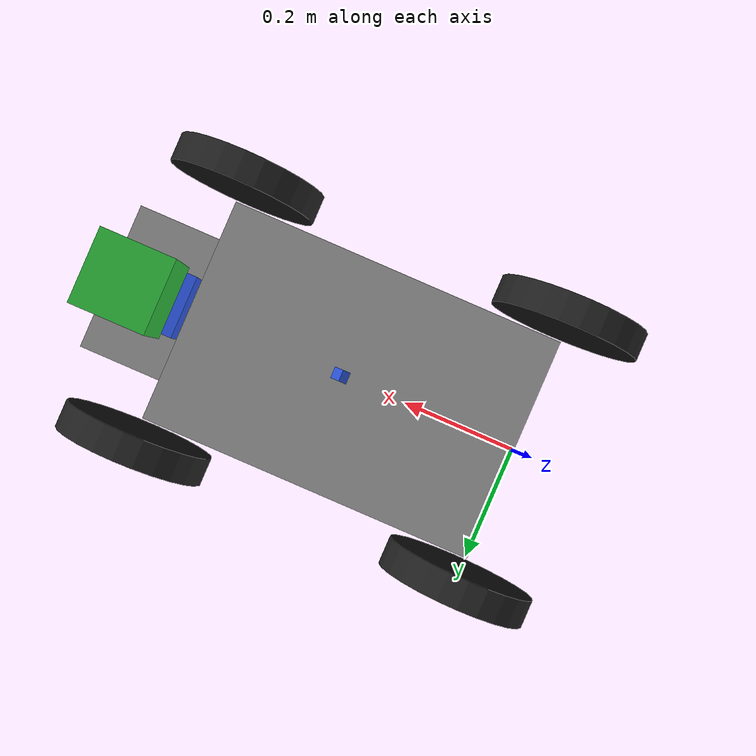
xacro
<?xml version="1.0"?>
<robot xmlns:xacro="http://www.ros.org/wiki/xacro" name="whill" >

    <link name="base_link">
    </link>

    <link name="base_floor">
        <visual>
            <geometry>
                <box size="0.600 0.400 0.050"/>
            </geometry>
            <material name="grey">
                <color rgba="0.5 0.5 0.5 1.0"/>
            </material>
        </visual>

        <collision>
            <geometry>
                <box size="0.600 0.400 0.050"/>
            </geometry>
        </collision>

        <inertial>
            <origin xyz="0 0 0" rpy="0 0 0" />
            <mass value="40" />
            <inertia ixx="1.0"  ixy="0.0"   ixz="0.0"
                                iyy="1.0"   iyz="0.0"
                                            izz="1.0" />
        </inertial>
    </link>

    <joint name="base_body_joint" type="fixed">
        <parent link="base_link" />
        <child link="base_floor" />
        <origin xyz="0.3 0 0.0" rpy="0 0 0"/>
    </joint>

    <link name="footrest_link">
        <collision>
            <geometry>
                <box size="0.250 0.260 0.050"/>
            </geometry>
        </collision>
        <visual>
            <geometry>
                <box size="0.250 0.260 0.050"/>
            </geometry>
            <material name="grey">
                <color rgba="0.5 0.5 0.5 1.0"/>
            </material>
        </visual>
        <inertial>
            <origin xyz="0 0 0" rpy="0 0 0" />
            <mass value="1" />
            <inertia ixx="1.0"  ixy="0.0"   ixz="0.0"
                                iyy="1.0"   iyz="0.0"
                                            izz="1.0" />
        </inertial>
    </link>

    <joint name="footrest_joint" type="fixed">
        <parent link="base_floor" />
        <child link="footrest_link" />
        <origin xyz="0.320 0 0" rpy="0 0 0"/>
    </joint>

    <link name="left_wheel_link">
        <visual>
            <geometry>
                <cylinder length="0.05" radius="0.1325"/>
            </geometry>
            <origin xyz="0 0 0" rpy="0 0 0" />
            <material name="black" />
        </visual>

        <collision>
            <geometry>
                <cylinder length="0.05" radius="0.1325"/>
            </geometry>
        </collision>

        <inertial>
            <origin xyz="0 0 0"/>
            <mass value="0.500"/>
            <inertia ixx="0.0013541667" ixy="0" ixz="0" iyy="0.0013541667" iyz="0" izz="0.0025"/>
        </inertial>
    </link>

    <joint name="leftWheel" type="continuous">
        <parent link="base_floor" />
        <child link="left_wheel_link" />
        <origin xyz="-0.3 0.245 0" rpy="1.57 0 0" />
        <axis xyz="0 0 -1" />
    </joint>

    <link name="right_wheel_link">
        <collision>
            <origin xyz="0 0 0" rpy="0 0 0" />
            <geometry>
                <cylinder length="0.05" radius="0.1325"/>
            </geometry>
        </collision>
        <visual>
            <origin xyz="0 0 0" rpy="0 0 0" />
            <geometry>
                <cylinder length="0.05" radius="0.1325"/>
            </geometry>
            <material name="black" />
        </visual>
        <inertial>
            <origin xyz="0 0 0"/>
            <mass value="0.500"/>
            <inertia ixx="0.0013541667" ixy="0" ixz="0" iyy="0.0013541667" iyz="0" izz="0.0025"/>
        </inertial>
    </link>

    <joint name="rightWheel" type="continuous">
        <parent link="base_floor" />
        <child link="right_wheel_link" />
        <origin xyz="-0.3 -0.245 0" rpy="-1.57 0 0" />
        <axis xyz="0 0 1" />
    </joint>

    <link name="frontwheel_left">
        <collision>
            <geometry>
                <cylinder length="0.05" radius="0.1325"/>
            </geometry>
        </collision>

        <visual>
            <geometry>
                <cylinder length="0.05" radius="0.1325"/>
            </geometry>
            <material name="black" />
        </visual>

        <inertial>
            <origin xyz="0 0 0" rpy="0 0 0" />
            <mass value="1.0" />
            <inertia ixx="1.0"  ixy="0.0"   ixz="0.0"
                                iyy="1.0"   iyz="0.0"
                                            izz="1.0" />
        </inertial>
    </link>

    <joint name="frontwheel_left_joint" type="fixed">
        <parent link="base_floor" />
        <child link="frontwheel_left" />
        <origin xyz="0.3 -0.245 0" rpy="1.57 0 0" />
        <axis xyz="0 0 -1" />
    </joint>

    <link name="frontwheel_right">
        <collision>
            <geometry>
                <cylinder length="0.05" radius="0.1325"/>
            </geometry>
        </collision>

        <visual>
            <geometry>
                <cylinder length="0.05" radius="0.1325"/>
            </geometry>
            <material name="black" />
        </visual>

        <inertial>
            <origin xyz="0 0 0" rpy="0 0 0" />
            <mass value="1.0" />
            <inertia ixx="1.0"  ixy="0.0"   ixz="0.0"
                                iyy="1.0"   iyz="0.0"
                                            izz="1.0" />
        </inertial>
    </link>

    <joint name="frontwheel_right_joint" type="fixed">
        <parent link="base_floor" />
        <child link="frontwheel_right"/>
        <origin xyz="0.3 0.245 0" rpy="1.57 0 0" />
        <axis xyz="0 0 1" />
    </joint>

     <!-- ===============  IMU =============== -->
    <link name="imu">
    <visual>
        <origin xyz="0 0 0" rpy="0 0 0" />
            <geometry>
                <box size="0.02 0.02 0.02"/>
            </geometry>
            <material name="Blue" />
        </visual>
    </link>

    <joint name="imu_joint" type="fixed">
        <parent link="base_floor"/>
        <child link="imu"/>
        <axis xyz="0 1 0" />
        <origin xyz="0.02 0 0.05" rpy="0 0.85521133347 3.14159265359"/>
    </joint>

    <!-- =============== Sensor =============== -->
    <!-- =============== Camera =============== -->
    <link name="camera_link">
    <visual>
      <origin xyz="0 0 0" rpy="0 0 0" />
      <geometry>
        <box size="0.05 0.1 0.05"/>
      </geometry>
      <material name="Blue" />
    </visual>
  </link>

  <joint name="camera_joint" type="fixed">
    <parent link="base_floor"/>
    <child link="camera_link" />
    <origin xyz="0.3 0 0.2" rpy="0 0 0" />
  </joint>

  <gazebo reference="camera_link">
    <material>Gazebo/Blue</material>
    <turnGravityOff>false</turnGravityOff>
    <sensor type="camera" name="camera1">
      <update_rate>15.0</update_rate>
      <camera name="head">

          <pose>0 0 0 0 0 0</pose>

        <horizontal_fov>1.3962634</horizontal_fov>
        <image>
          <width>400</width>
          <height>400</height>
          <format>R8G8B8</format>
        </image>
        <clip>
          <near>0.01</near>
          <far>100</far>
        </clip>
        <noise>
          <type>gaussian</type>
          <stddev>0.007</stddev>
        </noise>
      </camera>
      <plugin name="camera_controller" filename="libgazebo_ros_camera.so">
        <alwaysOn>true</alwaysOn>
        <updateRate>0.0</updateRate>
        <cameraName>whill/camera1</cameraName>
        <imageTopicName>image_raw</imageTopicName>
        <cameraInfoTopicName>camera_info</cameraInfoTopicName>
        <frameName>camera_link</frameName>
        <hackBaseline>0.07</hackBaseline>
        <distortionK1>0.0</distortionK1>
        <distortionK2>0.0</distortionK2>
        <distortionK3>0.0</distortionK3>
        <distortionT1>0.0</distortionT1>
        <distortionT2>0.0</distortionT2>
      </plugin>
    </sensor>
  </gazebo>
    <!-- =============== LiDAR =============== -->
    <link name="lidar_link">
        <visual>
        <origin xyz="0 0 0" rpy="0 0 0" />
        <geometry>
            <box size="0.1 0.1 0.1"/>
        </geometry>
        <material name="Green" />
        </visual>
    </link>

    <joint name="lidar_joint" type="fixed">
        <parent link="base_floor"/>
        <child link="lidar_link" />
        <origin xyz="0.3 0 0.5" rpy="0 0 0" />
    </joint>

    <gazebo reference="lidar_link">
        <material>Gazebo/Green</material>
        <sensor type="ray" name="head_rplidar_sensor">
            <pose>0 0 0 0 0 0</pose>
            <visualize>false</visualize>
            <update_rate>40</update_rate>
            <ray>
                <scan>
                    <horizontal>
                        <samples>720</samples>
                        <resolution>1</resolution>
                        <min_angle>-3.14159265</min_angle>
                        <max_angle>3.14159265</max_angle>
                    </horizontal>
                </scan>
                <range>
                    <min>0.2</min>
                    <max>12.0</max>
                    <resolution>0.01</resolution>
                </range>
                <noise>
                    <type>gaussian</type>
                    <mean>0.0</mean>
                    <stddev>0.01</stddev>
                </noise>
            </ray>
            <plugin name="gazebo_ros_head_rplidar_controller" filename="libgazebo_ros_laser.so">
                <topicName>scan</topicName>
                <frameName>lidar_link</frameName>
            </plugin>
            </sensor>
    </gazebo>
    <!-- ===============  Transmission =============== -->

    <transmission name="right_wheel_trans">
        <type>transmission_interface/SimpleTransmission</type>
        <joint name="rightWheel">
            <hardwareInterface>hardware_interface/VelocityJointInterface</hardwareInterface>
        </joint>
        <actuator name="right_wheel_motor">
            <hardwareInterface>hardware_interface/VelocityJointInterface</hardwareInterface>
            <mechanicalReduction>30</mechanicalReduction>
        </actuator>
    </transmission>

    <transmission name="left_wheel_trans">
        <type>transmission_interface/SimpleTransmission</type>
        <joint name="leftWheel">
            <hardwareInterface>hardware_interface/VelocityJointInterface</hardwareInterface>
        </joint>
        <actuator name="left_wheel_motor">
            <hardwareInterface>hardware_interface/VelocityJointInterface</hardwareInterface>
            <mechanicalReduction>30</mechanicalReduction>
        </actuator>
    </transmission>

    <!-- ===============  Gazebo =============== -->
    <gazebo>
        <plugin name="gazebo_ros_control" filename="libgazebo_ros_control.so">
            <robotNamespace>/whill</robotNamespace>
            <legacyModeNS>true</legacyModeNS>
        </plugin>
    </gazebo>

    <gazebo reference="base_floor">
        <selfCollide>true</selfCollide>
        <mu1 value="0.05" />
        <mu2 value="0.05" />
    </gazebo>

    <gazebo reference="right_wheel_link">
        <selfCollide>true</selfCollide>
        <material>Gazebo/Gray</material>
        <mu1 value="0.8" />
        <mu2 value="0.8" />
    </gazebo>

    <gazebo reference="left_wheel_link">
        <selfCollide>true</selfCollide>
        <material>Gazebo/Gray</material>
        <mu1 value="0.8" />
        <mu2 value="0.8" />
    </gazebo>

    <gazebo reference="frontwheel_right">
        <selfCollide>true</selfCollide>
        <material>Gazebo/Gray</material>
        <mu1 value="0.0" />
        <mu2 value="0.0" />
    </gazebo>

    <gazebo reference="frontwheel_left">
        <selfCollide>true</selfCollide>
        <material>Gazebo/Gray</material>
        <mu1 value="0.0" />
        <mu2 value="0.0" />
    </gazebo>

</robot>
